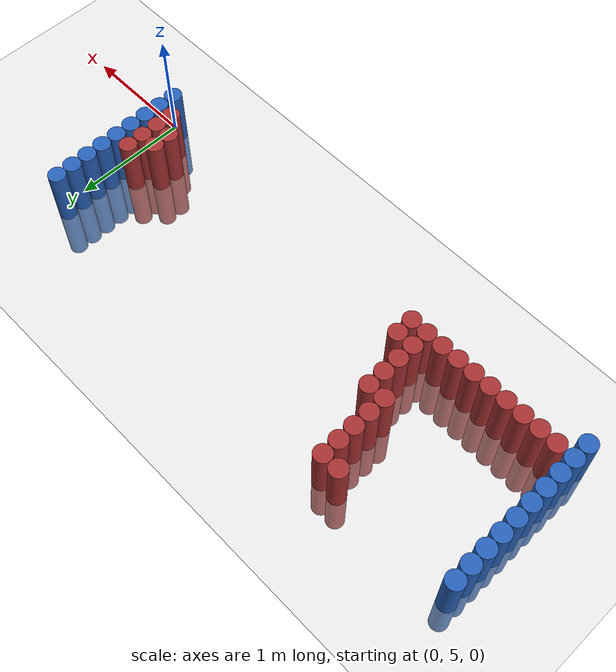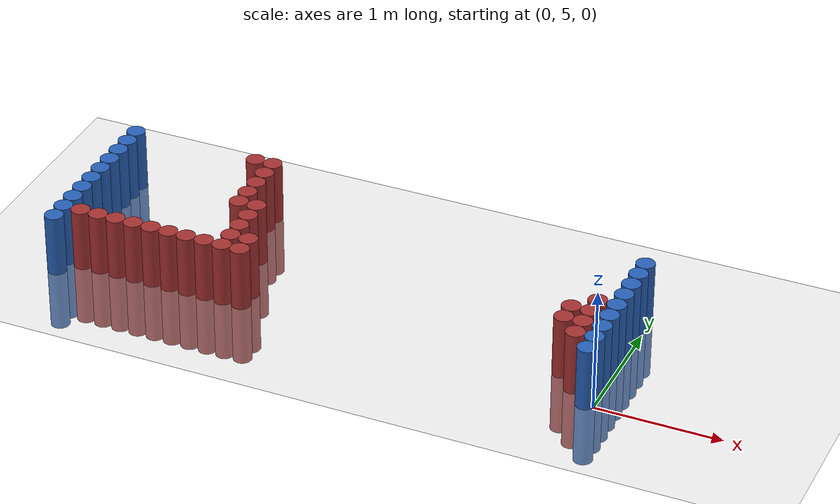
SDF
<sdf version="1.6">
 <world name="default">
  <model name="ground_plane">
   <static>1</static>
   <link name="link">
    <collision name="collision">
     <geometry><plane><normal>0 0 1</normal><size>100 100</size></plane></geometry>
     <surface><friction><ode><mu>100</mu><mu2>50</mu2></ode></friction></surface>
    </collision>
    <visual name="visual">
     <cast_shadows>0</cast_shadows>
     <geometry><plane><normal>0 0 1</normal><size>100 100</size></plane></geometry>
     <material>
      <script><uri>file://media/materials/scripts/gazebo.material</uri><name>Gazebo/Grey</name></script>
     </material>
    </visual>
   </link>
  </model>
  <model name="unit_cylinder_94">
   <static>1</static>
   <pose>-0.075000 5.025000 0.000000 0.000000 0.000000 0.000000</pose>
   <link name="link">
    <inertial>
     <mass>1</mass>
     <inertia><ixx>0.145833</ixx><ixy>0</ixy><ixz>0</ixz><iyy>0.145833</iyy><iyz>0</iyz><izz>0.125</izz></inertia>
    </inertial>
    <collision name="collision">
     <geometry><cylinder><radius>0.075000</radius><length>1</length></cylinder></geometry>
    </collision>
    <visual name="visual">
     <geometry><cylinder><radius>0.075000</radius><length>1</length></cylinder></geometry>
     <material>
      <ambient>0.152000 0.379000 0.720000 1</ambient>
      <diffuse>0.152000 0.379000 0.720000 1</diffuse>
     </material>
     <material>
      <script><name>Gazebo/Grey</name><uri>file://media/materials/scripts/gazebo.material</uri></script>
     </material>
    </visual>
   </link>
  </model>
  <model name="unit_cylinder_95">
   <static>1</static>
   <pose>-4.425000 5.025000 0.000000 0.000000 0.000000 0.000000</pose>
   <link name="link">
    <inertial>
     <mass>1</mass>
     <inertia><ixx>0.145833</ixx><ixy>0</ixy><ixz>0</ixz><iyy>0.145833</iyy><iyz>0</iyz><izz>0.125</izz></inertia>
    </inertial>
    <collision name="collision">
     <geometry><cylinder><radius>0.075000</radius><length>1</length></cylinder></geometry>
    </collision>
    <visual name="visual">
     <geometry><cylinder><radius>0.075000</radius><length>1</length></cylinder></geometry>
     <material>
      <ambient>0.152000 0.379000 0.720000 1</ambient>
      <diffuse>0.152000 0.379000 0.720000 1</diffuse>
     </material>
     <material>
      <script><name>Gazebo/Grey</name><uri>file://media/materials/scripts/gazebo.material</uri></script>
     </material>
    </visual>
   </link>
  </model>
  <model name="unit_cylinder_96">
   <static>1</static>
   <pose>-4.425000 5.175000 0.000000 0.000000 0.000000 0.000000</pose>
   <link name="link">
    <inertial>
     <mass>1</mass>
     <inertia><ixx>0.145833</ixx><ixy>0</ixy><ixz>0</ixz><iyy>0.145833</iyy><iyz>0</iyz><izz>0.125</izz></inertia>
    </inertial>
    <collision name="collision">
     <geometry><cylinder><radius>0.075000</radius><length>1</length></cylinder></geometry>
    </collision>
    <visual name="visual">
     <geometry><cylinder><radius>0.075000</radius><length>1</length></cylinder></geometry>
     <material>
      <ambient>0.152000 0.379000 0.720000 1</ambient>
      <diffuse>0.152000 0.379000 0.720000 1</diffuse>
     </material>
     <material>
      <script><name>Gazebo/Grey</name><uri>file://media/materials/scripts/gazebo.material</uri></script>
     </material>
    </visual>
   </link>
  </model>
  <model name="unit_cylinder_97">
   <static>1</static>
   <pose>-4.425000 5.325000 0.000000 0.000000 0.000000 0.000000</pose>
   <link name="link">
    <inertial>
     <mass>1</mass>
     <inertia><ixx>0.145833</ixx><ixy>0</ixy><ixz>0</ixz><iyy>0.145833</iyy><iyz>0</iyz><izz>0.125</izz></inertia>
    </inertial>
    <collision name="collision">
     <geometry><cylinder><radius>0.075000</radius><length>1</length></cylinder></geometry>
    </collision>
    <visual name="visual">
     <geometry><cylinder><radius>0.075000</radius><length>1</length></cylinder></geometry>
     <material>
      <ambient>0.152000 0.379000 0.720000 1</ambient>
      <diffuse>0.152000 0.379000 0.720000 1</diffuse>
     </material>
     <material>
      <script><name>Gazebo/Grey</name><uri>file://media/materials/scripts/gazebo.material</uri></script>
     </material>
    </visual>
   </link>
  </model>
  <model name="unit_cylinder_98">
   <static>1</static>
   <pose>-4.425000 5.475000 0.000000 0.000000 0.000000 0.000000</pose>
   <link name="link">
    <inertial>
     <mass>1</mass>
     <inertia><ixx>0.145833</ixx><ixy>0</ixy><ixz>0</ixz><iyy>0.145833</iyy><iyz>0</iyz><izz>0.125</izz></inertia>
    </inertial>
    <collision name="collision">
     <geometry><cylinder><radius>0.075000</radius><length>1</length></cylinder></geometry>
    </collision>
    <visual name="visual">
     <geometry><cylinder><radius>0.075000</radius><length>1</length></cylinder></geometry>
     <material>
      <ambient>0.152000 0.379000 0.720000 1</ambient>
      <diffuse>0.152000 0.379000 0.720000 1</diffuse>
     </material>
     <material>
      <script><name>Gazebo/Grey</name><uri>file://media/materials/scripts/gazebo.material</uri></script>
     </material>
    </visual>
   </link>
  </model>
  <model name="unit_cylinder_99">
   <static>1</static>
   <pose>-4.425000 5.625000 0.000000 0.000000 0.000000 0.000000</pose>
   <link name="link">
    <inertial>
     <mass>1</mass>
     <inertia><ixx>0.145833</ixx><ixy>0</ixy><ixz>0</ixz><iyy>0.145833</iyy><iyz>0</iyz><izz>0.125</izz></inertia>
    </inertial>
    <collision name="collision">
     <geometry><cylinder><radius>0.075000</radius><length>1</length></cylinder></geometry>
    </collision>
    <visual name="visual">
     <geometry><cylinder><radius>0.075000</radius><length>1</length></cylinder></geometry>
     <material>
      <ambient>0.152000 0.379000 0.720000 1</ambient>
      <diffuse>0.152000 0.379000 0.720000 1</diffuse>
     </material>
     <material>
      <script><name>Gazebo/Grey</name><uri>file://media/materials/scripts/gazebo.material</uri></script>
     </material>
    </visual>
   </link>
  </model>
  <model name="unit_cylinder_100">
   <static>1</static>
   <pose>-4.425000 5.775000 0.000000 0.000000 0.000000 0.000000</pose>
   <link name="link">
    <inertial>
     <mass>1</mass>
     <inertia><ixx>0.145833</ixx><ixy>0</ixy><ixz>0</ixz><iyy>0.145833</iyy><iyz>0</iyz><izz>0.125</izz></inertia>
    </inertial>
    <collision name="collision">
     <geometry><cylinder><radius>0.075000</radius><length>1</length></cylinder></geometry>
    </collision>
    <visual name="visual">
     <geometry><cylinder><radius>0.075000</radius><length>1</length></cylinder></geometry>
     <material>
      <ambient>0.152000 0.379000 0.720000 1</ambient>
      <diffuse>0.152000 0.379000 0.720000 1</diffuse>
     </material>
     <material>
      <script><name>Gazebo/Grey</name><uri>file://media/materials/scripts/gazebo.material</uri></script>
     </material>
    </visual>
   </link>
  </model>
  <model name="unit_cylinder_101">
   <static>1</static>
   <pose>-4.425000 5.925000 0.000000 0.000000 0.000000 0.000000</pose>
   <link name="link">
    <inertial>
     <mass>1</mass>
     <inertia><ixx>0.145833</ixx><ixy>0</ixy><ixz>0</ixz><iyy>0.145833</iyy><iyz>0</iyz><izz>0.125</izz></inertia>
    </inertial>
    <collision name="collision">
     <geometry><cylinder><radius>0.075000</radius><length>1</length></cylinder></geometry>
    </collision>
    <visual name="visual">
     <geometry><cylinder><radius>0.075000</radius><length>1</length></cylinder></geometry>
     <material>
      <ambient>0.152000 0.379000 0.720000 1</ambient>
      <diffuse>0.152000 0.379000 0.720000 1</diffuse>
     </material>
     <material>
      <script><name>Gazebo/Grey</name><uri>file://media/materials/scripts/gazebo.material</uri></script>
     </material>
    </visual>
   </link>
  </model>
  <model name="unit_cylinder_102">
   <static>1</static>
   <pose>-4.425000 6.075000 0.000000 0.000000 0.000000 0.000000</pose>
   <link name="link">
    <inertial>
     <mass>1</mass>
     <inertia><ixx>0.145833</ixx><ixy>0</ixy><ixz>0</ixz><iyy>0.145833</iyy><iyz>0</iyz><izz>0.125</izz></inertia>
    </inertial>
    <collision name="collision">
     <geometry><cylinder><radius>0.075000</radius><length>1</length></cylinder></geometry>
    </collision>
    <visual name="visual">
     <geometry><cylinder><radius>0.075000</radius><length>1</length></cylinder></geometry>
     <material>
      <ambient>0.152000 0.379000 0.720000 1</ambient>
      <diffuse>0.152000 0.379000 0.720000 1</diffuse>
     </material>
     <material>
      <script><name>Gazebo/Grey</name><uri>file://media/materials/scripts/gazebo.material</uri></script>
     </material>
    </visual>
   </link>
  </model>
  <model name="unit_cylinder_103">
   <static>1</static>
   <pose>-4.425000 6.225000 0.000000 0.000000 0.000000 0.000000</pose>
   <link name="link">
    <inertial>
     <mass>1</mass>
     <inertia><ixx>0.145833</ixx><ixy>0</ixy><ixz>0</ixz><iyy>0.145833</iyy><iyz>0</iyz><izz>0.125</izz></inertia>
    </inertial>
    <collision name="collision">
     <geometry><cylinder><radius>0.075000</radius><length>1</length></cylinder></geometry>
    </collision>
    <visual name="visual">
     <geometry><cylinder><radius>0.075000</radius><length>1</length></cylinder></geometry>
     <material>
      <ambient>0.152000 0.379000 0.720000 1</ambient>
      <diffuse>0.152000 0.379000 0.720000 1</diffuse>
     </material>
     <material>
      <script><name>Gazebo/Grey</name><uri>file://media/materials/scripts/gazebo.material</uri></script>
     </material>
    </visual>
   </link>
  </model>
  <model name="unit_cylinder_104">
   <static>1</static>
   <pose>-4.425000 6.375000 0.000000 0.000000 0.000000 0.000000</pose>
   <link name="link">
    <inertial>
     <mass>1</mass>
     <inertia><ixx>0.145833</ixx><ixy>0</ixy><ixz>0</ixz><iyy>0.145833</iyy><iyz>0</iyz><izz>0.125</izz></inertia>
    </inertial>
    <collision name="collision">
     <geometry><cylinder><radius>0.075000</radius><length>1</length></cylinder></geometry>
    </collision>
    <visual name="visual">
     <geometry><cylinder><radius>0.075000</radius><length>1</length></cylinder></geometry>
     <material>
      <ambient>0.152000 0.379000 0.720000 1</ambient>
      <diffuse>0.152000 0.379000 0.720000 1</diffuse>
     </material>
     <material>
      <script><name>Gazebo/Grey</name><uri>file://media/materials/scripts/gazebo.material</uri></script>
     </material>
    </visual>
   </link>
  </model>
  <model name="unit_cylinder_126">
   <static>1</static>
   <pose>-4.275000 5.175000 0.000000 0.000000 0.000000 0.000000</pose>
   <link name="link">
    <inertial>
     <mass>1</mass>
     <inertia><ixx>0.145833</ixx><ixy>0</ixy><ixz>0</ixz><iyy>0.145833</iyy><iyz>0</iyz><izz>0.125</izz></inertia>
    </inertial>
    <collision name="collision">
     <geometry><cylinder><radius>0.075000</radius><length>1</length></cylinder></geometry>
    </collision>
    <visual name="visual">
     <geometry><cylinder><radius>0.075000</radius><length>1</length></cylinder></geometry>
     <material>
      <ambient>0.648000 0.192000 0.192000 1</ambient>
      <diffuse>0.648000 0.192000 0.192000 1</diffuse>
     </material>
     <material>
      <script><name>Gazebo/Grey</name><uri>file://media/materials/scripts/gazebo.material</uri></script>
     </material>
    </visual>
   </link>
  </model>
  <model name="unit_cylinder_128">
   <static>1</static>
   <pose>-4.125000 5.175000 0.000000 0.000000 0.000000 0.000000</pose>
   <link name="link">
    <inertial>
     <mass>1</mass>
     <inertia><ixx>0.145833</ixx><ixy>0</ixy><ixz>0</ixz><iyy>0.145833</iyy><iyz>0</iyz><izz>0.125</izz></inertia>
    </inertial>
    <collision name="collision">
     <geometry><cylinder><radius>0.075000</radius><length>1</length></cylinder></geometry>
    </collision>
    <visual name="visual">
     <geometry><cylinder><radius>0.075000</radius><length>1</length></cylinder></geometry>
     <material>
      <ambient>0.648000 0.192000 0.192000 1</ambient>
      <diffuse>0.648000 0.192000 0.192000 1</diffuse>
     </material>
     <material>
      <script><name>Gazebo/Grey</name><uri>file://media/materials/scripts/gazebo.material</uri></script>
     </material>
    </visual>
   </link>
  </model>
  <model name="unit_cylinder_131">
   <static>1</static>
   <pose>-3.975000 5.175000 0.000000 0.000000 0.000000 0.000000</pose>
   <link name="link">
    <inertial>
     <mass>1</mass>
     <inertia><ixx>0.145833</ixx><ixy>0</ixy><ixz>0</ixz><iyy>0.145833</iyy><iyz>0</iyz><izz>0.125</izz></inertia>
    </inertial>
    <collision name="collision">
     <geometry><cylinder><radius>0.075000</radius><length>1</length></cylinder></geometry>
    </collision>
    <visual name="visual">
     <geometry><cylinder><radius>0.075000</radius><length>1</length></cylinder></geometry>
     <material>
      <ambient>0.648000 0.192000 0.192000 1</ambient>
      <diffuse>0.648000 0.192000 0.192000 1</diffuse>
     </material>
     <material>
      <script><name>Gazebo/Grey</name><uri>file://media/materials/scripts/gazebo.material</uri></script>
     </material>
    </visual>
   </link>
  </model>
  <model name="unit_cylinder_133">
   <static>1</static>
   <pose>-3.825000 5.175000 0.000000 0.000000 0.000000 0.000000</pose>
   <link name="link">
    <inertial>
     <mass>1</mass>
     <inertia><ixx>0.145833</ixx><ixy>0</ixy><ixz>0</ixz><iyy>0.145833</iyy><iyz>0</iyz><izz>0.125</izz></inertia>
    </inertial>
    <collision name="collision">
     <geometry><cylinder><radius>0.075000</radius><length>1</length></cylinder></geometry>
    </collision>
    <visual name="visual">
     <geometry><cylinder><radius>0.075000</radius><length>1</length></cylinder></geometry>
     <material>
      <ambient>0.648000 0.192000 0.192000 1</ambient>
      <diffuse>0.648000 0.192000 0.192000 1</diffuse>
     </material>
     <material>
      <script><name>Gazebo/Grey</name><uri>file://media/materials/scripts/gazebo.material</uri></script>
     </material>
    </visual>
   </link>
  </model>
  <model name="unit_cylinder_136">
   <static>1</static>
   <pose>-3.675000 5.175000 0.000000 0.000000 0.000000 0.000000</pose>
   <link name="link">
    <inertial>
     <mass>1</mass>
     <inertia><ixx>0.145833</ixx><ixy>0</ixy><ixz>0</ixz><iyy>0.145833</iyy><iyz>0</iyz><izz>0.125</izz></inertia>
    </inertial>
    <collision name="collision">
     <geometry><cylinder><radius>0.075000</radius><length>1</length></cylinder></geometry>
    </collision>
    <visual name="visual">
     <geometry><cylinder><radius>0.075000</radius><length>1</length></cylinder></geometry>
     <material>
      <ambient>0.648000 0.192000 0.192000 1</ambient>
      <diffuse>0.648000 0.192000 0.192000 1</diffuse>
     </material>
     <material>
      <script><name>Gazebo/Grey</name><uri>file://media/materials/scripts/gazebo.material</uri></script>
     </material>
    </visual>
   </link>
  </model>
  <model name="unit_cylinder_144">
   <static>1</static>
   <pose>-3.525000 5.175000 0.000000 0.000000 0.000000 0.000000</pose>
   <link name="link">
    <inertial>
     <mass>1</mass>
     <inertia><ixx>0.145833</ixx><ixy>0</ixy><ixz>0</ixz><iyy>0.145833</iyy><iyz>0</iyz><izz>0.125</izz></inertia>
    </inertial>
    <collision name="collision">
     <geometry><cylinder><radius>0.075000</radius><length>1</length></cylinder></geometry>
    </collision>
    <visual name="visual">
     <geometry><cylinder><radius>0.075000</radius><length>1</length></cylinder></geometry>
     <material>
      <ambient>0.648000 0.192000 0.192000 1</ambient>
      <diffuse>0.648000 0.192000 0.192000 1</diffuse>
     </material>
     <material>
      <script><name>Gazebo/Grey</name><uri>file://media/materials/scripts/gazebo.material</uri></script>
     </material>
    </visual>
   </link>
  </model>
  <model name="unit_cylinder_155">
   <static>1</static>
   <pose>-3.375000 5.175000 0.000000 0.000000 0.000000 0.000000</pose>
   <link name="link">
    <inertial>
     <mass>1</mass>
     <inertia><ixx>0.145833</ixx><ixy>0</ixy><ixz>0</ixz><iyy>0.145833</iyy><iyz>0</iyz><izz>0.125</izz></inertia>
    </inertial>
    <collision name="collision">
     <geometry><cylinder><radius>0.075000</radius><length>1</length></cylinder></geometry>
    </collision>
    <visual name="visual">
     <geometry><cylinder><radius>0.075000</radius><length>1</length></cylinder></geometry>
     <material>
      <ambient>0.648000 0.192000 0.192000 1</ambient>
      <diffuse>0.648000 0.192000 0.192000 1</diffuse>
     </material>
     <material>
      <script><name>Gazebo/Grey</name><uri>file://media/materials/scripts/gazebo.material</uri></script>
     </material>
    </visual>
   </link>
  </model>
  <model name="unit_cylinder_156">
   <static>1</static>
   <pose>-3.375000 6.375000 0.000000 0.000000 0.000000 0.000000</pose>
   <link name="link">
    <inertial>
     <mass>1</mass>
     <inertia><ixx>0.145833</ixx><ixy>0</ixy><ixz>0</ixz><iyy>0.145833</iyy><iyz>0</iyz><izz>0.125</izz></inertia>
    </inertial>
    <collision name="collision">
     <geometry><cylinder><radius>0.075000</radius><length>1</length></cylinder></geometry>
    </collision>
    <visual name="visual">
     <geometry><cylinder><radius>0.075000</radius><length>1</length></cylinder></geometry>
     <material>
      <ambient>0.648000 0.192000 0.192000 1</ambient>
      <diffuse>0.648000 0.192000 0.192000 1</diffuse>
     </material>
     <material>
      <script><name>Gazebo/Grey</name><uri>file://media/materials/scripts/gazebo.material</uri></script>
     </material>
    </visual>
   </link>
  </model>
  <model name="unit_cylinder_165">
   <static>1</static>
   <pose>-3.225000 5.175000 0.000000 0.000000 0.000000 0.000000</pose>
   <link name="link">
    <inertial>
     <mass>1</mass>
     <inertia><ixx>0.145833</ixx><ixy>0</ixy><ixz>0</ixz><iyy>0.145833</iyy><iyz>0</iyz><izz>0.125</izz></inertia>
    </inertial>
    <collision name="collision">
     <geometry><cylinder><radius>0.075000</radius><length>1</length></cylinder></geometry>
    </collision>
    <visual name="visual">
     <geometry><cylinder><radius>0.075000</radius><length>1</length></cylinder></geometry>
     <material>
      <ambient>0.648000 0.192000 0.192000 1</ambient>
      <diffuse>0.648000 0.192000 0.192000 1</diffuse>
     </material>
     <material>
      <script><name>Gazebo/Grey</name><uri>file://media/materials/scripts/gazebo.material</uri></script>
     </material>
    </visual>
   </link>
  </model>
  <model name="unit_cylinder_166">
   <static>1</static>
   <pose>-3.225000 5.775000 0.000000 0.000000 0.000000 0.000000</pose>
   <link name="link">
    <inertial>
     <mass>1</mass>
     <inertia><ixx>0.145833</ixx><ixy>0</ixy><ixz>0</ixz><iyy>0.145833</iyy><iyz>0</iyz><izz>0.125</izz></inertia>
    </inertial>
    <collision name="collision">
     <geometry><cylinder><radius>0.075000</radius><length>1</length></cylinder></geometry>
    </collision>
    <visual name="visual">
     <geometry><cylinder><radius>0.075000</radius><length>1</length></cylinder></geometry>
     <material>
      <ambient>0.648000 0.192000 0.192000 1</ambient>
      <diffuse>0.648000 0.192000 0.192000 1</diffuse>
     </material>
     <material>
      <script><name>Gazebo/Grey</name><uri>file://media/materials/scripts/gazebo.material</uri></script>
     </material>
    </visual>
   </link>
  </model>
  <model name="unit_cylinder_167">
   <static>1</static>
   <pose>-3.225000 5.925000 0.000000 0.000000 0.000000 0.000000</pose>
   <link name="link">
    <inertial>
     <mass>1</mass>
     <inertia><ixx>0.145833</ixx><ixy>0</ixy><ixz>0</ixz><iyy>0.145833</iyy><iyz>0</iyz><izz>0.125</izz></inertia>
    </inertial>
    <collision name="collision">
     <geometry><cylinder><radius>0.075000</radius><length>1</length></cylinder></geometry>
    </collision>
    <visual name="visual">
     <geometry><cylinder><radius>0.075000</radius><length>1</length></cylinder></geometry>
     <material>
      <ambient>0.648000 0.192000 0.192000 1</ambient>
      <diffuse>0.648000 0.192000 0.192000 1</diffuse>
     </material>
     <material>
      <script><name>Gazebo/Grey</name><uri>file://media/materials/scripts/gazebo.material</uri></script>
     </material>
    </visual>
   </link>
  </model>
  <model name="unit_cylinder_168">
   <static>1</static>
   <pose>-3.225000 6.075000 0.000000 0.000000 0.000000 0.000000</pose>
   <link name="link">
    <inertial>
     <mass>1</mass>
     <inertia><ixx>0.145833</ixx><ixy>0</ixy><ixz>0</ixz><iyy>0.145833</iyy><iyz>0</iyz><izz>0.125</izz></inertia>
    </inertial>
    <collision name="collision">
     <geometry><cylinder><radius>0.075000</radius><length>1</length></cylinder></geometry>
    </collision>
    <visual name="visual">
     <geometry><cylinder><radius>0.075000</radius><length>1</length></cylinder></geometry>
     <material>
      <ambient>0.648000 0.192000 0.192000 1</ambient>
      <diffuse>0.648000 0.192000 0.192000 1</diffuse>
     </material>
     <material>
      <script><name>Gazebo/Grey</name><uri>file://media/materials/scripts/gazebo.material</uri></script>
     </material>
    </visual>
   </link>
  </model>
  <model name="unit_cylinder_169">
   <static>1</static>
   <pose>-3.225000 6.225000 0.000000 0.000000 0.000000 0.000000</pose>
   <link name="link">
    <inertial>
     <mass>1</mass>
     <inertia><ixx>0.145833</ixx><ixy>0</ixy><ixz>0</ixz><iyy>0.145833</iyy><iyz>0</iyz><izz>0.125</izz></inertia>
    </inertial>
    <collision name="collision">
     <geometry><cylinder><radius>0.075000</radius><length>1</length></cylinder></geometry>
    </collision>
    <visual name="visual">
     <geometry><cylinder><radius>0.075000</radius><length>1</length></cylinder></geometry>
     <material>
      <ambient>0.648000 0.192000 0.192000 1</ambient>
      <diffuse>0.648000 0.192000 0.192000 1</diffuse>
     </material>
     <material>
      <script><name>Gazebo/Grey</name><uri>file://media/materials/scripts/gazebo.material</uri></script>
     </material>
    </visual>
   </link>
  </model>
  <model name="unit_cylinder_170">
   <static>1</static>
   <pose>-3.225000 6.375000 0.000000 0.000000 0.000000 0.000000</pose>
   <link name="link">
    <inertial>
     <mass>1</mass>
     <inertia><ixx>0.145833</ixx><ixy>0</ixy><ixz>0</ixz><iyy>0.145833</iyy><iyz>0</iyz><izz>0.125</izz></inertia>
    </inertial>
    <collision name="collision">
     <geometry><cylinder><radius>0.075000</radius><length>1</length></cylinder></geometry>
    </collision>
    <visual name="visual">
     <geometry><cylinder><radius>0.075000</radius><length>1</length></cylinder></geometry>
     <material>
      <ambient>0.648000 0.192000 0.192000 1</ambient>
      <diffuse>0.648000 0.192000 0.192000 1</diffuse>
     </material>
     <material>
      <script><name>Gazebo/Grey</name><uri>file://media/materials/scripts/gazebo.material</uri></script>
     </material>
    </visual>
   </link>
  </model>
  <model name="unit_cylinder_176">
   <static>1</static>
   <pose>-3.075000 5.175000 0.000000 0.000000 0.000000 0.000000</pose>
   <link name="link">
    <inertial>
     <mass>1</mass>
     <inertia><ixx>0.145833</ixx><ixy>0</ixy><ixz>0</ixz><iyy>0.145833</iyy><iyz>0</iyz><izz>0.125</izz></inertia>
    </inertial>
    <collision name="collision">
     <geometry><cylinder><radius>0.075000</radius><length>1</length></cylinder></geometry>
    </collision>
    <visual name="visual">
     <geometry><cylinder><radius>0.075000</radius><length>1</length></cylinder></geometry>
     <material>
      <ambient>0.648000 0.192000 0.192000 1</ambient>
      <diffuse>0.648000 0.192000 0.192000 1</diffuse>
     </material>
     <material>
      <script><name>Gazebo/Grey</name><uri>file://media/materials/scripts/gazebo.material</uri></script>
     </material>
    </visual>
   </link>
  </model>
  <model name="unit_cylinder_177">
   <static>1</static>
   <pose>-3.075000 5.325000 0.000000 0.000000 0.000000 0.000000</pose>
   <link name="link">
    <inertial>
     <mass>1</mass>
     <inertia><ixx>0.145833</ixx><ixy>0</ixy><ixz>0</ixz><iyy>0.145833</iyy><iyz>0</iyz><izz>0.125</izz></inertia>
    </inertial>
    <collision name="collision">
     <geometry><cylinder><radius>0.075000</radius><length>1</length></cylinder></geometry>
    </collision>
    <visual name="visual">
     <geometry><cylinder><radius>0.075000</radius><length>1</length></cylinder></geometry>
     <material>
      <ambient>0.648000 0.192000 0.192000 1</ambient>
      <diffuse>0.648000 0.192000 0.192000 1</diffuse>
     </material>
     <material>
      <script><name>Gazebo/Grey</name><uri>file://media/materials/scripts/gazebo.material</uri></script>
     </material>
    </visual>
   </link>
  </model>
  <model name="unit_cylinder_178">
   <static>1</static>
   <pose>-3.075000 5.475000 0.000000 0.000000 0.000000 0.000000</pose>
   <link name="link">
    <inertial>
     <mass>1</mass>
     <inertia><ixx>0.145833</ixx><ixy>0</ixy><ixz>0</ixz><iyy>0.145833</iyy><iyz>0</iyz><izz>0.125</izz></inertia>
    </inertial>
    <collision name="collision">
     <geometry><cylinder><radius>0.075000</radius><length>1</length></cylinder></geometry>
    </collision>
    <visual name="visual">
     <geometry><cylinder><radius>0.075000</radius><length>1</length></cylinder></geometry>
     <material>
      <ambient>0.648000 0.192000 0.192000 1</ambient>
      <diffuse>0.648000 0.192000 0.192000 1</diffuse>
     </material>
     <material>
      <script><name>Gazebo/Grey</name><uri>file://media/materials/scripts/gazebo.material</uri></script>
     </material>
    </visual>
   </link>
  </model>
  <model name="unit_cylinder_179">
   <static>1</static>
   <pose>-3.075000 5.625000 0.000000 0.000000 0.000000 0.000000</pose>
   <link name="link">
    <inertial>
     <mass>1</mass>
     <inertia><ixx>0.145833</ixx><ixy>0</ixy><ixz>0</ixz><iyy>0.145833</iyy><iyz>0</iyz><izz>0.125</izz></inertia>
    </inertial>
    <collision name="collision">
     <geometry><cylinder><radius>0.075000</radius><length>1</length></cylinder></geometry>
    </collision>
    <visual name="visual">
     <geometry><cylinder><radius>0.075000</radius><length>1</length></cylinder></geometry>
     <material>
      <ambient>0.648000 0.192000 0.192000 1</ambient>
      <diffuse>0.648000 0.192000 0.192000 1</diffuse>
     </material>
     <material>
      <script><name>Gazebo/Grey</name><uri>file://media/materials/scripts/gazebo.material</uri></script>
     </material>
    </visual>
   </link>
  </model>
  <model name="unit_cylinder_180">
   <static>1</static>
   <pose>-3.075000 5.775000 0.000000 0.000000 0.000000 0.000000</pose>
   <link name="link">
    <inertial>
     <mass>1</mass>
     <inertia><ixx>0.145833</ixx><ixy>0</ixy><ixz>0</ixz><iyy>0.145833</iyy><iyz>0</iyz><izz>0.125</izz></inertia>
    </inertial>
    <collision name="collision">
     <geometry><cylinder><radius>0.075000</radius><length>1</length></cylinder></geometry>
    </collision>
    <visual name="visual">
     <geometry><cylinder><radius>0.075000</radius><length>1</length></cylinder></geometry>
     <material>
      <ambient>0.648000 0.192000 0.192000 1</ambient>
      <diffuse>0.648000 0.192000 0.192000 1</diffuse>
     </material>
     <material>
      <script><name>Gazebo/Grey</name><uri>file://media/materials/scripts/gazebo.material</uri></script>
     </material>
    </visual>
   </link>
  </model>
  <model name="unit_cylinder_186">
   <static>1</static>
   <pose>-2.925000 5.175000 0.000000 0.000000 0.000000 0.000000</pose>
   <link name="link">
    <inertial>
     <mass>1</mass>
     <inertia><ixx>0.145833</ixx><ixy>0</ixy><ixz>0</ixz><iyy>0.145833</iyy><iyz>0</iyz><izz>0.125</izz></inertia>
    </inertial>
    <collision name="collision">
     <geometry><cylinder><radius>0.075000</radius><length>1</length></cylinder></geometry>
    </collision>
    <visual name="visual">
     <geometry><cylinder><radius>0.075000</radius><length>1</length></cylinder></geometry>
     <material>
      <ambient>0.648000 0.192000 0.192000 1</ambient>
      <diffuse>0.648000 0.192000 0.192000 1</diffuse>
     </material>
     <material>
      <script><name>Gazebo/Grey</name><uri>file://media/materials/scripts/gazebo.material</uri></script>
     </material>
    </visual>
   </link>
  </model>
  <model name="unit_cylinder_187">
   <static>1</static>
   <pose>-2.925000 5.325000 0.000000 0.000000 0.000000 0.000000</pose>
   <link name="link">
    <inertial>
     <mass>1</mass>
     <inertia><ixx>0.145833</ixx><ixy>0</ixy><ixz>0</ixz><iyy>0.145833</iyy><iyz>0</iyz><izz>0.125</izz></inertia>
    </inertial>
    <collision name="collision">
     <geometry><cylinder><radius>0.075000</radius><length>1</length></cylinder></geometry>
    </collision>
    <visual name="visual">
     <geometry><cylinder><radius>0.075000</radius><length>1</length></cylinder></geometry>
     <material>
      <ambient>0.648000 0.192000 0.192000 1</ambient>
      <diffuse>0.648000 0.192000 0.192000 1</diffuse>
     </material>
     <material>
      <script><name>Gazebo/Grey</name><uri>file://media/materials/scripts/gazebo.material</uri></script>
     </material>
    </visual>
   </link>
  </model>
  <model name="unit_cylinder_238">
   <static>1</static>
   <pose>-0.375000 5.325000 0.000000 0.000000 0.000000 0.000000</pose>
   <link name="link">
    <inertial>
     <mass>1</mass>
     <inertia><ixx>0.145833</ixx><ixy>0</ixy><ixz>0</ixz><iyy>0.145833</iyy><iyz>0</iyz><izz>0.125</izz></inertia>
    </inertial>
    <collision name="collision">
     <geometry><cylinder><radius>0.075000</radius><length>1</length></cylinder></geometry>
    </collision>
    <visual name="visual">
     <geometry><cylinder><radius>0.075000</radius><length>1</length></cylinder></geometry>
     <material>
      <ambient>0.648000 0.192000 0.192000 1</ambient>
      <diffuse>0.648000 0.192000 0.192000 1</diffuse>
     </material>
     <material>
      <script><name>Gazebo/Grey</name><uri>file://media/materials/scripts/gazebo.material</uri></script>
     </material>
    </visual>
   </link>
  </model>
  <model name="unit_cylinder_239">
   <static>1</static>
   <pose>-0.375000 5.475000 0.000000 0.000000 0.000000 0.000000</pose>
   <link name="link">
    <inertial>
     <mass>1</mass>
     <inertia><ixx>0.145833</ixx><ixy>0</ixy><ixz>0</ixz><iyy>0.145833</iyy><iyz>0</iyz><izz>0.125</izz></inertia>
    </inertial>
    <collision name="collision">
     <geometry><cylinder><radius>0.075000</radius><length>1</length></cylinder></geometry>
    </collision>
    <visual name="visual">
     <geometry><cylinder><radius>0.075000</radius><length>1</length></cylinder></geometry>
     <material>
      <ambient>0.648000 0.192000 0.192000 1</ambient>
      <diffuse>0.648000 0.192000 0.192000 1</diffuse>
     </material>
     <material>
      <script><name>Gazebo/Grey</name><uri>file://media/materials/scripts/gazebo.material</uri></script>
     </material>
    </visual>
   </link>
  </model>
  <model name="unit_cylinder_243">
   <static>1</static>
   <pose>-0.225000 5.175000 0.000000 0.000000 0.000000 0.000000</pose>
   <link name="link">
    <inertial>
     <mass>1</mass>
     <inertia><ixx>0.145833</ixx><ixy>0</ixy><ixz>0</ixz><iyy>0.145833</iyy><iyz>0</iyz><izz>0.125</izz></inertia>
    </inertial>
    <collision name="collision">
     <geometry><cylinder><radius>0.075000</radius><length>1</length></cylinder></geometry>
    </collision>
    <visual name="visual">
     <geometry><cylinder><radius>0.075000</radius><length>1</length></cylinder></geometry>
     <material>
      <ambient>0.648000 0.192000 0.192000 1</ambient>
      <diffuse>0.648000 0.192000 0.192000 1</diffuse>
     </material>
     <material>
      <script><name>Gazebo/Grey</name><uri>file://media/materials/scripts/gazebo.material</uri></script>
     </material>
    </visual>
   </link>
  </model>
  <model name="unit_cylinder_244">
   <static>1</static>
   <pose>-0.225000 5.325000 0.000000 0.000000 0.000000 0.000000</pose>
   <link name="link">
    <inertial>
     <mass>1</mass>
     <inertia><ixx>0.145833</ixx><ixy>0</ixy><ixz>0</ixz><iyy>0.145833</iyy><iyz>0</iyz><izz>0.125</izz></inertia>
    </inertial>
    <collision name="collision">
     <geometry><cylinder><radius>0.075000</radius><length>1</length></cylinder></geometry>
    </collision>
    <visual name="visual">
     <geometry><cylinder><radius>0.075000</radius><length>1</length></cylinder></geometry>
     <material>
      <ambient>0.648000 0.192000 0.192000 1</ambient>
      <diffuse>0.648000 0.192000 0.192000 1</diffuse>
     </material>
     <material>
      <script><name>Gazebo/Grey</name><uri>file://media/materials/scripts/gazebo.material</uri></script>
     </material>
    </visual>
   </link>
  </model>
  <model name="unit_cylinder_245">
   <static>1</static>
   <pose>-0.225000 5.475000 0.000000 0.000000 0.000000 0.000000</pose>
   <link name="link">
    <inertial>
     <mass>1</mass>
     <inertia><ixx>0.145833</ixx><ixy>0</ixy><ixz>0</ixz><iyy>0.145833</iyy><iyz>0</iyz><izz>0.125</izz></inertia>
    </inertial>
    <collision name="collision">
     <geometry><cylinder><radius>0.075000</radius><length>1</length></cylinder></geometry>
    </collision>
    <visual name="visual">
     <geometry><cylinder><radius>0.075000</radius><length>1</length></cylinder></geometry>
     <material>
      <ambient>0.648000 0.192000 0.192000 1</ambient>
      <diffuse>0.648000 0.192000 0.192000 1</diffuse>
     </material>
     <material>
      <script><name>Gazebo/Grey</name><uri>file://media/materials/scripts/gazebo.material</uri></script>
     </material>
    </visual>
   </link>
  </model>
  <model name="unit_cylinder_246">
   <static>1</static>
   <pose>-0.225000 5.625000 0.000000 0.000000 0.000000 0.000000</pose>
   <link name="link">
    <inertial>
     <mass>1</mass>
     <inertia><ixx>0.145833</ixx><ixy>0</ixy><ixz>0</ixz><iyy>0.145833</iyy><iyz>0</iyz><izz>0.125</izz></inertia>
    </inertial>
    <collision name="collision">
     <geometry><cylinder><radius>0.075000</radius><length>1</length></cylinder></geometry>
    </collision>
    <visual name="visual">
     <geometry><cylinder><radius>0.075000</radius><length>1</length></cylinder></geometry>
     <material>
      <ambient>0.648000 0.192000 0.192000 1</ambient>
      <diffuse>0.648000 0.192000 0.192000 1</diffuse>
     </material>
     <material>
      <script><name>Gazebo/Grey</name><uri>file://media/materials/scripts/gazebo.material</uri></script>
     </material>
    </visual>
   </link>
  </model>
  <model name="unit_cylinder_249">
   <static>1</static>
   <pose>-0.075000 5.175000 0.000000 0.000000 0.000000 0.000000</pose>
   <link name="link">
    <inertial>
     <mass>1</mass>
     <inertia><ixx>0.145833</ixx><ixy>0</ixy><ixz>0</ixz><iyy>0.145833</iyy><iyz>0</iyz><izz>0.125</izz></inertia>
    </inertial>
    <collision name="collision">
     <geometry><cylinder><radius>0.075000</radius><length>1</length></cylinder></geometry>
    </collision>
    <visual name="visual">
     <geometry><cylinder><radius>0.075000</radius><length>1</length></cylinder></geometry>
     <material>
      <ambient>0.152000 0.379000 0.720000 1</ambient>
      <diffuse>0.152000 0.379000 0.720000 1</diffuse>
     </material>
     <material>
      <script><name>Gazebo/Grey</name><uri>file://media/materials/scripts/gazebo.material</uri></script>
     </material>
    </visual>
   </link>
  </model>
  <model name="unit_cylinder_250">
   <static>1</static>
   <pose>-0.075000 5.325000 0.000000 0.000000 0.000000 0.000000</pose>
   <link name="link">
    <inertial>
     <mass>1</mass>
     <inertia><ixx>0.145833</ixx><ixy>0</ixy><ixz>0</ixz><iyy>0.145833</iyy><iyz>0</iyz><izz>0.125</izz></inertia>
    </inertial>
    <collision name="collision">
     <geometry><cylinder><radius>0.075000</radius><length>1</length></cylinder></geometry>
    </collision>
    <visual name="visual">
     <geometry><cylinder><radius>0.075000</radius><length>1</length></cylinder></geometry>
     <material>
      <ambient>0.152000 0.379000 0.720000 1</ambient>
      <diffuse>0.152000 0.379000 0.720000 1</diffuse>
     </material>
     <material>
      <script><name>Gazebo/Grey</name><uri>file://media/materials/scripts/gazebo.material</uri></script>
     </material>
    </visual>
   </link>
  </model>
  <model name="unit_cylinder_251">
   <static>1</static>
   <pose>-0.075000 5.475000 0.000000 0.000000 0.000000 0.000000</pose>
   <link name="link">
    <inertial>
     <mass>1</mass>
     <inertia><ixx>0.145833</ixx><ixy>0</ixy><ixz>0</ixz><iyy>0.145833</iyy><iyz>0</iyz><izz>0.125</izz></inertia>
    </inertial>
    <collision name="collision">
     <geometry><cylinder><radius>0.075000</radius><length>1</length></cylinder></geometry>
    </collision>
    <visual name="visual">
     <geometry><cylinder><radius>0.075000</radius><length>1</length></cylinder></geometry>
     <material>
      <ambient>0.152000 0.379000 0.720000 1</ambient>
      <diffuse>0.152000 0.379000 0.720000 1</diffuse>
     </material>
     <material>
      <script><name>Gazebo/Grey</name><uri>file://media/materials/scripts/gazebo.material</uri></script>
     </material>
    </visual>
   </link>
  </model>
  <model name="unit_cylinder_252">
   <static>1</static>
   <pose>-0.075000 5.625000 0.000000 0.000000 0.000000 0.000000</pose>
   <link name="link">
    <inertial>
     <mass>1</mass>
     <inertia><ixx>0.145833</ixx><ixy>0</ixy><ixz>0</ixz><iyy>0.145833</iyy><iyz>0</iyz><izz>0.125</izz></inertia>
    </inertial>
    <collision name="collision">
     <geometry><cylinder><radius>0.075000</radius><length>1</length></cylinder></geometry>
    </collision>
    <visual name="visual">
     <geometry><cylinder><radius>0.075000</radius><length>1</length></cylinder></geometry>
     <material>
      <ambient>0.152000 0.379000 0.720000 1</ambient>
      <diffuse>0.152000 0.379000 0.720000 1</diffuse>
     </material>
     <material>
      <script><name>Gazebo/Grey</name><uri>file://media/materials/scripts/gazebo.material</uri></script>
     </material>
    </visual>
   </link>
  </model>
  <model name="unit_cylinder_253">
   <static>1</static>
   <pose>-0.075000 5.775000 0.000000 0.000000 0.000000 0.000000</pose>
   <link name="link">
    <inertial>
     <mass>1</mass>
     <inertia><ixx>0.145833</ixx><ixy>0</ixy><ixz>0</ixz><iyy>0.145833</iyy><iyz>0</iyz><izz>0.125</izz></inertia>
    </inertial>
    <collision name="collision">
     <geometry><cylinder><radius>0.075000</radius><length>1</length></cylinder></geometry>
    </collision>
    <visual name="visual">
     <geometry><cylinder><radius>0.075000</radius><length>1</length></cylinder></geometry>
     <material>
      <ambient>0.152000 0.379000 0.720000 1</ambient>
      <diffuse>0.152000 0.379000 0.720000 1</diffuse>
     </material>
     <material>
      <script><name>Gazebo/Grey</name><uri>file://media/materials/scripts/gazebo.material</uri></script>
     </material>
    </visual>
   </link>
  </model>
  <model name="unit_cylinder_254">
   <static>1</static>
   <pose>-0.075000 5.925000 0.000000 0.000000 0.000000 0.000000</pose>
   <link name="link">
    <inertial>
     <mass>1</mass>
     <inertia><ixx>0.145833</ixx><ixy>0</ixy><ixz>0</ixz><iyy>0.145833</iyy><iyz>0</iyz><izz>0.125</izz></inertia>
    </inertial>
    <collision name="collision">
     <geometry><cylinder><radius>0.075000</radius><length>1</length></cylinder></geometry>
    </collision>
    <visual name="visual">
     <geometry><cylinder><radius>0.075000</radius><length>1</length></cylinder></geometry>
     <material>
      <ambient>0.152000 0.379000 0.720000 1</ambient>
      <diffuse>0.152000 0.379000 0.720000 1</diffuse>
     </material>
     <material>
      <script><name>Gazebo/Grey</name><uri>file://media/materials/scripts/gazebo.material</uri></script>
     </material>
    </visual>
   </link>
  </model>
  <model name="unit_cylinder_255">
   <static>1</static>
   <pose>-0.075000 6.075000 0.000000 0.000000 0.000000 0.000000</pose>
   <link name="link">
    <inertial>
     <mass>1</mass>
     <inertia><ixx>0.145833</ixx><ixy>0</ixy><ixz>0</ixz><iyy>0.145833</iyy><iyz>0</iyz><izz>0.125</izz></inertia>
    </inertial>
    <collision name="collision">
     <geometry><cylinder><radius>0.075000</radius><length>1</length></cylinder></geometry>
    </collision>
    <visual name="visual">
     <geometry><cylinder><radius>0.075000</radius><length>1</length></cylinder></geometry>
     <material>
      <ambient>0.152000 0.379000 0.720000 1</ambient>
      <diffuse>0.152000 0.379000 0.720000 1</diffuse>
     </material>
     <material>
      <script><name>Gazebo/Grey</name><uri>file://media/materials/scripts/gazebo.material</uri></script>
     </material>
    </visual>
   </link>
  </model>
  <model name="unit_cylinder_256">
   <static>1</static>
   <pose>-0.075000 6.225000 0.000000 0.000000 0.000000 0.000000</pose>
   <link name="link">
    <inertial>
     <mass>1</mass>
     <inertia><ixx>0.145833</ixx><ixy>0</ixy><ixz>0</ixz><iyy>0.145833</iyy><iyz>0</iyz><izz>0.125</izz></inertia>
    </inertial>
    <collision name="collision">
     <geometry><cylinder><radius>0.075000</radius><length>1</length></cylinder></geometry>
    </collision>
    <visual name="visual">
     <geometry><cylinder><radius>0.075000</radius><length>1</length></cylinder></geometry>
     <material>
      <ambient>0.152000 0.379000 0.720000 1</ambient>
      <diffuse>0.152000 0.379000 0.720000 1</diffuse>
     </material>
     <material>
      <script><name>Gazebo/Grey</name><uri>file://media/materials/scripts/gazebo.material</uri></script>
     </material>
    </visual>
   </link>
  </model>
 </world>
</sdf>
